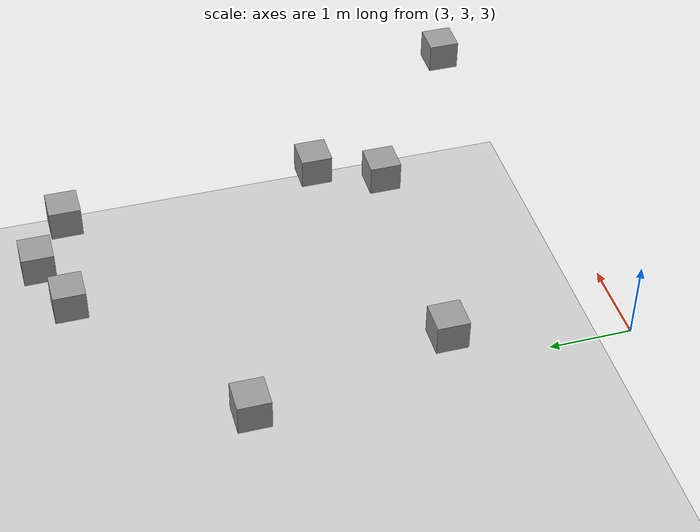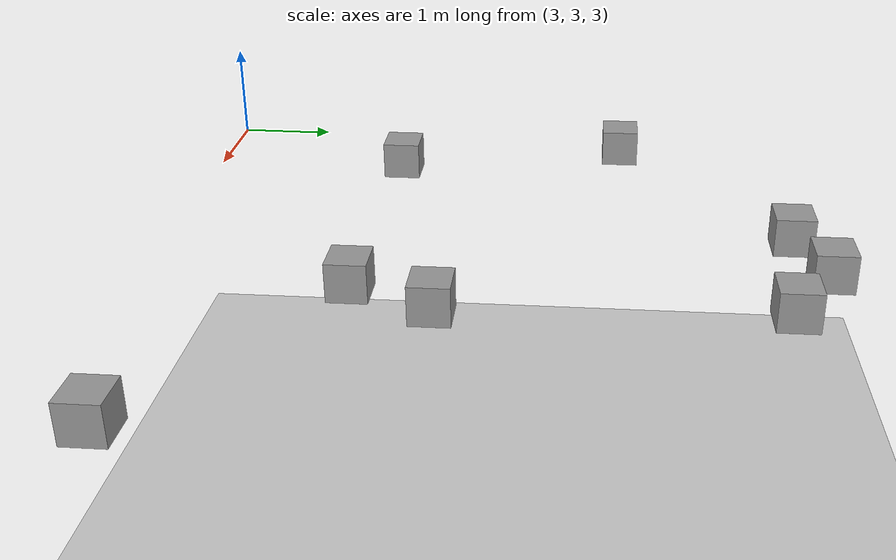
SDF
<sdf version="1.7">
 <world name="default">
  <model name="ground_plane">
   <static>1</static>
   <link name="link">
    <collision name="collision">
     <geometry><plane><normal>0 0 1</normal><size>100 100</size></plane></geometry>
     <surface><friction><ode><mu>100</mu><mu2>50</mu2></ode></friction></surface>
    </collision>
    <visual name="visual">
     <cast_shadows>0</cast_shadows>
     <geometry><plane><normal>0 0 1</normal><size>100 100</size></plane></geometry>
     <material>
      <script><uri>file://media/materials/scripts/gazebo.material</uri><name>Gazebo/Grey</name></script>
     </material>
    </visual>
   </link>
  </model>
  <model name="unit_box">
   <pose>6 9.5 3 0 -0 0</pose>
   <link name="link">
    <inertial>
     <mass>1</mass>
     <inertia>
      <ixx>0.166667</ixx>
      <ixy>0</ixy>
      <ixz>0</ixz>
      <iyy>0.166667</iyy>
      <iyz>0</iyz>
      <izz>0.166667</izz>
     </inertia>
    </inertial>
    <collision name="collision"><geometry><box><size>0.4 0.4 0.4</size></box></geometry></collision>
    <visual name="visual">
     <geometry><box><size>0.4 0.4 0.4</size></box></geometry>
     <material>
      <script><name>Gazebo/Grey</name><uri>file://media/materials/scripts/gazebo.material</uri></script>
     </material>
    </visual>
   </link>
  </model>
  <model name="unit_box_clone">
   <pose>6.74006 9.05942 3 0 -0 0</pose>
   <link name="link">
    <inertial>
     <mass>1</mass>
     <inertia>
      <ixx>0.166667</ixx>
      <ixy>0</ixy>
      <ixz>0</ixz>
      <iyy>0.166667</iyy>
      <iyz>0</iyz>
      <izz>0.166667</izz>
     </inertia>
    </inertial>
    <collision name="collision"><geometry><box><size>0.4 0.4 0.4</size></box></geometry></collision>
    <visual name="visual">
     <geometry><box><size>0.4 0.4 0.4</size></box></geometry>
     <material>
      <script><name>Gazebo/Grey</name><uri>file://media/materials/scripts/gazebo.material</uri></script>
     </material>
    </visual>
   </link>
  </model>
  <model name="unit_box_clone_0">
   <pose>5.26531 9.2292 3 0 -0 0</pose>
   <link name="link">
    <inertial>
     <mass>1</mass>
     <inertia>
      <ixx>0.166667</ixx>
      <ixy>0</ixy>
      <ixz>0</ixz>
      <iyy>0.166667</iyy>
      <iyz>0</iyz>
      <izz>0.166667</izz>
     </inertia>
    </inertial>
    <collision name="collision"><geometry><box><size>0.4 0.4 0.4</size></box></geometry></collision>
    <visual name="visual">
     <geometry><box><size>0.4 0.4 0.4</size></box></geometry>
     <material>
      <script><name>Gazebo/Grey</name><uri>file://media/materials/scripts/gazebo.material</uri></script>
     </material>
    </visual>
   </link>
  </model>
  <model name="unit_box_clone_1">
   <pose>6.52346 4.9574 3 0 -0 0</pose>
   <link name="link">
    <inertial>
     <mass>1</mass>
     <inertia>
      <ixx>0.166667</ixx>
      <ixy>0</ixy>
      <ixz>0</ixz>
      <iyy>0.166667</iyy>
      <iyz>0</iyz>
      <izz>0.166667</izz>
     </inertia>
    </inertial>
    <collision name="collision"><geometry><box><size>0.4 0.4 0.4</size></box></geometry></collision>
    <visual name="visual">
     <geometry><box><size>0.4 0.4 0.4</size></box></geometry>
     <material>
      <script><name>Gazebo/Grey</name><uri>file://media/materials/scripts/gazebo.material</uri></script>
     </material>
    </visual>
   </link>
  </model>
  <model name="unit_box_clone_2">
   <pose>8.82217 3.39774 3 0 -0 0</pose>
   <link name="link">
    <inertial>
     <mass>1</mass>
     <inertia>
      <ixx>0.166667</ixx>
      <ixy>0</ixy>
      <ixz>0</ixz>
      <iyy>0.166667</iyy>
      <iyz>0</iyz>
      <izz>0.166667</izz>
     </inertia>
    </inertial>
    <collision name="collision"><geometry><box><size>0.4 0.4 0.4</size></box></geometry></collision>
    <visual name="visual">
     <geometry><box><size>0.4 0.4 0.4</size></box></geometry>
     <material>
      <script><name>Gazebo/Grey</name><uri>file://media/materials/scripts/gazebo.material</uri></script>
     </material>
    </visual>
   </link>
  </model>
  <model name="unit_box_clone_3">
   <pose>6.88396 5.77537 3 0 -0 0</pose>
   <link name="link">
    <inertial>
     <mass>1</mass>
     <inertia>
      <ixx>0.166667</ixx>
      <ixy>0</ixy>
      <ixz>0</ixz>
      <iyy>0.166667</iyy>
      <iyz>0</iyz>
      <izz>0.166667</izz>
     </inertia>
    </inertial>
    <collision name="collision"><geometry><box><size>0.4 0.4 0.4</size></box></geometry></collision>
    <visual name="visual">
     <geometry><box><size>0.4 0.4 0.4</size></box></geometry>
     <material>
      <script><name>Gazebo/Grey</name><uri>file://media/materials/scripts/gazebo.material</uri></script>
     </material>
    </visual>
   </link>
  </model>
  <model name="unit_box_clone_6">
   <pose>3.05723 7.52745 3 0 -0 0</pose>
   <link name="link">
    <inertial>
     <mass>1</mass>
     <inertia>
      <ixx>0.166667</ixx>
      <ixy>0</ixy>
      <ixz>0</ixz>
      <iyy>0.166667</iyy>
      <iyz>0</iyz>
      <izz>0.166667</izz>
     </inertia>
    </inertial>
    <collision name="collision"><geometry><box><size>0.4 0.4 0.4</size></box></geometry></collision>
    <visual name="visual">
     <geometry><box><size>0.4 0.4 0.4</size></box></geometry>
     <material>
      <script><name>Gazebo/Grey</name><uri>file://media/materials/scripts/gazebo.material</uri></script>
     </material>
    </visual>
   </link>
  </model>
  <model name="unit_box_clone_7">
   <pose>3.6248 5.02634 3 0 -0 0</pose>
   <link name="link">
    <inertial>
     <mass>1</mass>
     <inertia>
      <ixx>0.166667</ixx>
      <ixy>0</ixy>
      <ixz>0</ixz>
      <iyy>0.166667</iyy>
      <iyz>0</iyz>
      <izz>0.166667</izz>
     </inertia>
    </inertial>
    <collision name="collision"><geometry><box><size>0.4 0.4 0.4</size></box></geometry></collision>
    <visual name="visual">
     <geometry><box><size>0.4 0.4 0.4</size></box></geometry>
     <material>
      <script><name>Gazebo/Grey</name><uri>file://media/materials/scripts/gazebo.material</uri></script>
     </material>
    </visual>
   </link>
  </model>
 </world>
</sdf>
